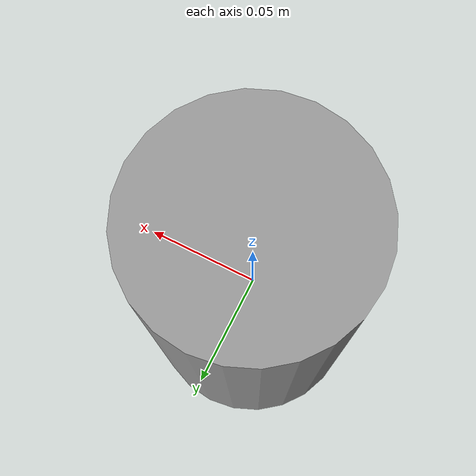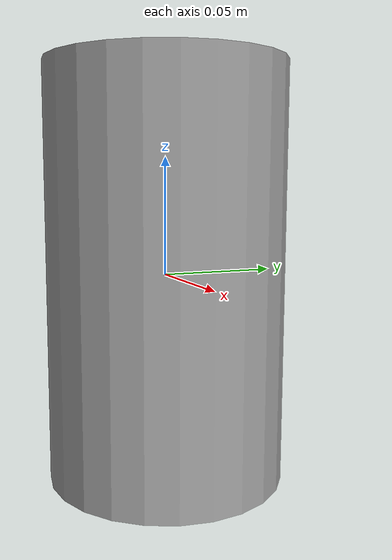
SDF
<?xml version="1.0" ?>
<sdf version="1.6">
  <model name ='uw_apl_rod'>
    <link name='link'>
      <inertial>
        <mass>1</mass>
        <inertia>
          <ixx>0.145833</ixx>
          <ixy>0</ixy>
          <ixz>0</ixz>
          <iyy>0.145833</iyy>
          <iyz>0</iyz>
          <izz>0.125</izz>
        </inertia>
        <pose frame=''>0 0 0 0 0 0</pose>
      </inertial>
      <collision name='cylinder'>
        <geometry>
          <cylinder>
            <radius>0.0508</radius>
            <length>0.1778</length>
          </cylinder>
        </geometry>
      </collision>
      <visual name='visual'>
        <geometry>
          <cylinder>
            <radius>0.0508</radius>
            <length>0.1778</length>
          </cylinder>
        </geometry>
        <material>
          <script>
            <name>Gazebo/Grey</name>
            <uri>file://media/materials/scripts/gazebo.material</uri>
          </script>
        </material>
      </visual>
      <self_collide>0</self_collide>
      <enable_wind>0</enable_wind>
      <kinematic>0</kinematic>
    </link>
  </model>
</sdf>
